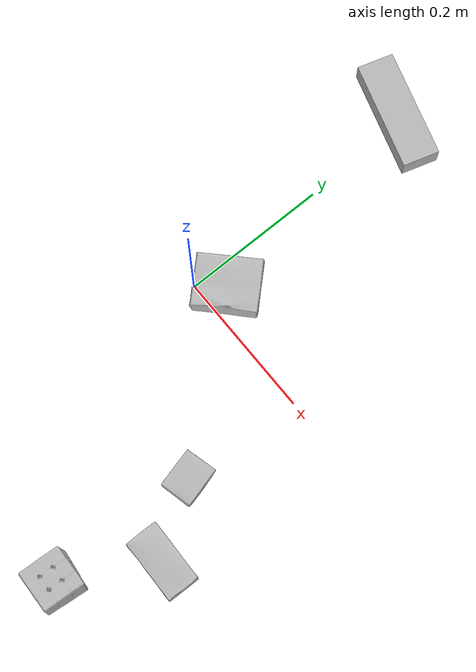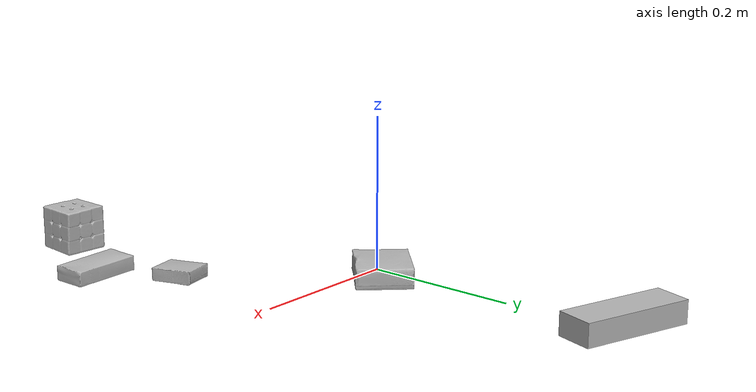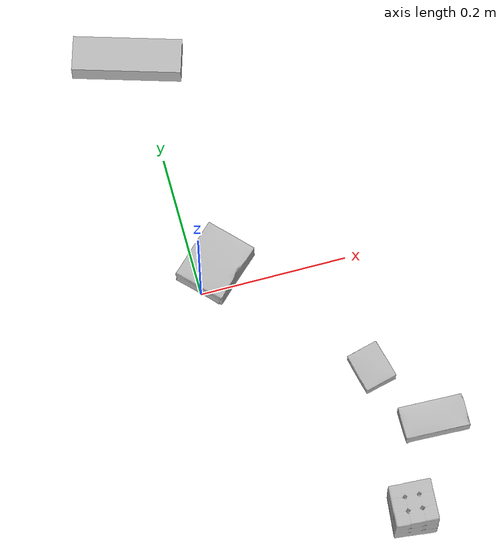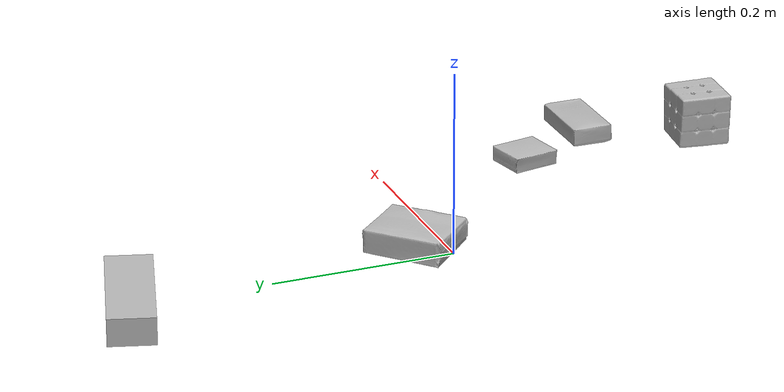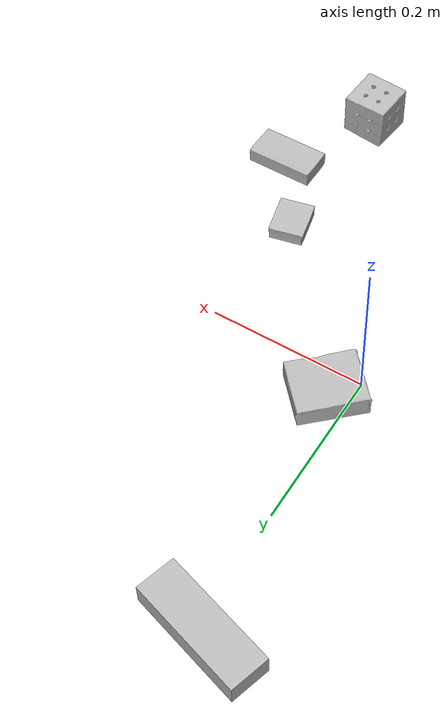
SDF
<sdf version="1.4">
  <world name="default">
    <light name="light1" type="point">
      <pose>0 0 1 0 0 0</pose>
      <diffuse>3 3 3 1</diffuse>
      <specular>3 3 3 1</specular>
    </light>
    <light name="light2" type="point">
      <pose>0 0.5 2 0 0 0</pose>
      <diffuse>1 1 1 1</diffuse>
      <specular>1 1 1 1</specular>
    </light>
    <light name="light3" type="point">
      <pose>0 0.5 2 0 0 0</pose>
      <diffuse>3 3 3 1</diffuse>
      <specular>3 3 3 1</specular>
    </light>
    <scene>
      <ambient>0.7 0.7 0.7</ambient>
    </scene>
    <model name="box1">
      <link name="link_box1">
        <collision name="default">
          <geometry>
            <mesh>
              <uri>model://sugar_box/collision_meshes/collision.obj</uri>
              <scale>0.5 0.5 0.5</scale>
            </mesh>
          </geometry>
          <surface>
            <friction>
              <ode>
                <mu>0.5</mu>
                <mu2>0.5</mu2>
              </ode>
            </friction>
          <contact>
        <ode>
            <max_vel>0</max_vel>
            <min_depth>0.0001</min_depth>
            <kp>1e8</kp>
        </ode>
    </contact></surface>
        </collision>
        <visual name="default">
          <geometry>
            <mesh>
              <uri>model://sugar_box/visual_meshes/visual.dae</uri>
              <scale>0.5 0.5 0.5</scale>
            </mesh>
          </geometry>
        </visual>
        <inertial>
          <mass>0.06211651861667633</mass>
          <pose>0.0005171863595023751 1.9245546354795806e-05 -0.00018182402709499002 -0.00040462630054681676 0.0010506634057476226 0.0026153787889456807</pose>
          <inertia>
            <ixx>1.2938825e-05</ixx>
            <iyy>4.1820942e-05</iyy>
            <izz>5.0064667e-05</izz>
            <ixy>0</ixy>
            <ixz>0</ixz>
            <iyz>0</iyz>
          </inertia>
        </inertial>
      </link>
      <pose>0.2514002323150635 -0.2520226538181305 0.011399301700294018 0.0007746014197737173 -0.02343307414839582 3.1166272359356433</pose>
    </model>
    <model name="box2">
      <link name="link_box2">
        <collision name="default">
          <geometry>
            <mesh>
              <uri>model://rubiks_cube/collision_meshes/collision.obj</uri>
              <scale>1.0 1.0 1.0</scale>
            </mesh>
          </geometry>
          <surface>
            <friction>
              <ode>
                <mu>0.5</mu>
                <mu2>0.5</mu2>
              </ode>
            </friction>
          <contact>
        <ode>
            <max_vel>0</max_vel>
            <min_depth>0.0001</min_depth>
            <kp>1e8</kp>
        </ode>
    </contact></surface>
        </collision>
        <visual name="default">
          <geometry>
            <mesh>
              <uri>model://rubiks_cube/visual_meshes/visual.dae</uri>
              <scale>1.0 1.0 1.0</scale>
            </mesh>
          </geometry>
        </visual>
        <inertial>
          <mass>0.2700360119342804</mass>
          <pose>2.6721041649580002e-05 5.256967051536776e-05 -7.264316536748083e-06 -0.05467324422766238 -0.0981422115654675 -0.034454566623261795</pose>
          <inertia>
            <ixx>0.00014921304</ixx>
            <iyy>0.00014851718</iyy>
            <izz>0.00015044949</izz>
            <ixy>0</ixy>
            <ixz>0</ixz>
            <iyz>0</iyz>
          </inertia>
        </inertial>
      </link>
      <pose>0.18831977248191833 -0.3682464361190796 0.02867899090051651 -2.760254142446044e-06 -7.990234042764116e-07 -0.0713084961331255</pose>
    </model>
    <model name="box3">
      <link name="link_box3">
        <collision name="default">
          <geometry>
            <mesh>
              <uri>model://jenga/collision_meshes/collision.obj</uri>
              <scale>1.0 1.0 1.0</scale>
            </mesh>
          </geometry>
          <surface>
            <friction>
              <ode>
                <mu>0.5</mu>
                <mu2>0.5</mu2>
              </ode>
            </friction>
          <contact>
        <ode>
            <max_vel>0</max_vel>
            <min_depth>0.0001</min_depth>
            <kp>1e8</kp>
        </ode>
    </contact></surface>
        </collision>
        <visual name="default">
          <geometry>
            <mesh>
              <uri>model://jenga/visual_meshes/visual.dae</uri>
              <scale>1.0 1.0 1.0</scale>
            </mesh>
          </geometry>
        </visual>
        <inertial>
          <mass>0.12586519122123718</mass>
          <pose>-2.502855807051674e-07 -0.00010250010382151231 -4.0923401684267446e-05 0.0 -7.342154049184251e-07 0.0</pose>
          <inertia>
            <ixx>3.482995e-05</ixx>
            <iyy>0.0002360068</iyy>
            <izz>0.00025195733</izz>
            <ixy>0</ixy>
            <ixz>0</ixz>
            <iyz>0</iyz>
          </inertia>
        </inertial>
      </link>
      <pose>-0.012130999937653542 0.35486942529678345 0.014999997802078724 -1.9162426101735043e-09 3.5511732904402493e-09 2.848567656823529</pose>
    </model>
    <model name="box4">
      <link name="link_box4">
        <collision name="default">
          <geometry>
            <mesh>
              <uri>model://gelatin_box/collision_meshes/collision.obj</uri>
              <scale>1.0 1.0 1.0</scale>
            </mesh>
          </geometry>
          <surface>
            <friction>
              <ode>
                <mu>0.5</mu>
                <mu2>0.5</mu2>
              </ode>
            </friction>
          <contact>
        <ode>
            <max_vel>0</max_vel>
            <min_depth>0.0001</min_depth>
            <kp>1e8</kp>
        </ode>
    </contact></surface>
        </collision>
        <visual name="default">
          <geometry>
            <mesh>
              <uri>model://gelatin_box/visual_meshes/visual.dae</uri>
              <scale>1.0 1.0 1.0</scale>
            </mesh>
          </geometry>
        </visual>
        <inertial>
          <mass>0.0925464928150177</mass>
          <pose>0.0004319618456065655 0.00011156871914863586 -0.0003640321083366871 -0.0010503719798216618 -0.004755819622564704 0.01644055760929568</pose>
          <inertia>
            <ixx>6.533027e-05</ixx>
            <iyy>4.6665074e-05</iyy>
            <izz>9.9447236e-05</izz>
            <ixy>0</ixy>
            <ixz>0</ixz>
            <iyz>0</iyz>
          </inertia>
        </inertial>
      </link>
      <pose>0.027918407693505287 0.031853917986154556 0.015168312937021255 0.00559746562633972 -0.007304572153978681 -0.8164745350229705</pose>
    </model>
    <model name="box5">
      <link name="link_box5">
        <collision name="default">
          <geometry>
            <mesh>
              <uri>model://pudding_box/collision_meshes/collision.obj</uri>
              <scale>0.5 0.5 0.5</scale>
            </mesh>
          </geometry>
          <surface>
            <friction>
              <ode>
                <mu>0.5</mu>
                <mu2>0.5</mu2>
              </ode>
            </friction>
          <contact>
        <ode>
            <max_vel>0</max_vel>
            <min_depth>0.0001</min_depth>
            <kp>1e8</kp>
        </ode>
    </contact></surface>
        </collision>
        <visual name="default">
          <geometry>
            <mesh>
              <uri>model://pudding_box/visual_meshes/visual.dae</uri>
              <scale>0.5 0.5 0.5</scale>
            </mesh>
          </geometry>
        </visual>
        <inertial>
          <mass>0.0266704261302948</mass>
          <pose>0.00024474109522998333 0.00040339428232982755 -0.0002594413817860186 0.005213101812636465 -0.006603797316727521 0.020079823300208206</pose>
          <inertia>
            <ixx>7.5373864e-06</ixx>
            <iyy>5.0712065e-06</iyy>
            <izz>1.113092e-05</izz>
            <ixy>0</ixy>
            <ixz>0</ixz>
            <iyz>0</iyz>
          </inertia>
        </inertial>
      </link>
      <pose>0.1912103146314621 -0.1625363677740097 0.009862903505563736 0.022348502045820593 -0.011391705567862993 0.24537353405850987</pose>
    </model>
  <physics type="ode">
      <max_contacts>50</max_contacts>
      <ode>
        <solver>
          <type>quick</type>
          <iters>75</iters>
        </solver>
        <constraints>
          <contact_max_correcting_vel>0</contact_max_correcting_vel>
          <contact_surface_layer>0</contact_surface_layer>
        </constraints>
      </ode>
    </physics></world>
</sdf>
